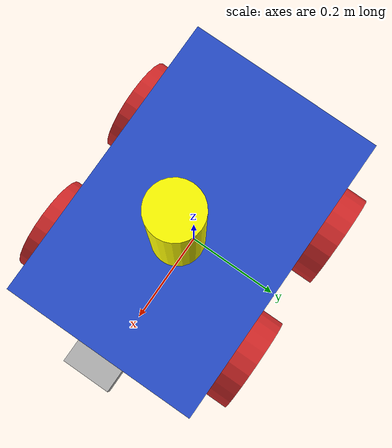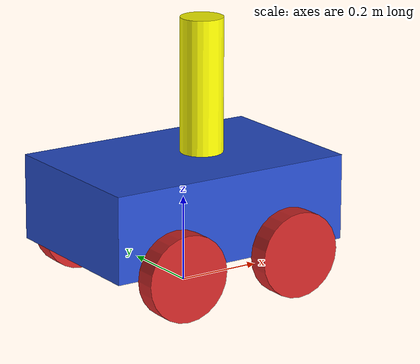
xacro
<?xml version="1.0"?>
<robot name="my_robot" xmlns:xacro="http://www.ros.org/wiki/xacro">

    <xacro:include filename="common_properties.xacro" />
    <xacro:include filename="mobile_base.xacro" />
    <xacro:include filename="mobile_base_gazebo.xacro" />
    <xacro:include filename="camera.xacro" />
    <xacro:include filename="arm.xacro" />
    <xacro:include filename="arm_gazebo.xacro" />

    <joint name="base_to_arm" type="fixed">
        <parent link="base_link" />
        <child link="arm_base_link" />
        <origin xyz="${arm_base_length/4.0} 0 ${arm_base_height/2}" rpy="0 0 0" />
    </joint>

    <gazebo reference="base_link">
    <visual>
      <material>
        <ambient>0.0 0.0 1.0 1.0</ambient> <diffuse>0.0 0.0 1.0 1.0</diffuse>
        <specular>0.1 0.1 0.1 1.0</specular>
      </material>
    </visual>
  </gazebo>

  <gazebo reference="right_wheel_link">
    <visual>
      <material>
        <ambient>0.2 0.2 0.2 1.0</ambient> <diffuse>0.2 0.2 0.2 1.0</diffuse>
      </material>
    </visual>
  </gazebo>

  <gazebo reference="left_wheel_link">
    <visual>
      <material>
        <ambient>0.2 0.2 0.2 1.0</ambient>
        <diffuse>0.2 0.2 0.2 1.0</diffuse>
      </material>
    </visual>
  </gazebo>

  <gazebo reference="caster_wheel_link">
    <visual>
      <material>
        <ambient>0.2 0.2 0.2 1.0</ambient>
        <diffuse>0.2 0.2 0.2 1.0</diffuse>
      </material>
    </visual>
  </gazebo>
</robot>

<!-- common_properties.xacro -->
<robot xmlns:xacro="http://www.ros.org/wiki/xacro">

  <material name="orange">
    <color rgba="1.0 0.5 0.0 1.0"/>
  </material>
  <material name="yellow">
    <color rgba="1.0 1.0 0.0 1.0"/>
  </material>

    <xacro:macro name="box_inertia" params="m x y z o_xyz o_rpy">
        <inertial>
            <mass value="${m}" />
            <origin xyz="${o_xyz}" rpy="${o_rpy}" />
            <inertia ixx="${(m/12) * (y*y + z*z)}" ixy="0" ixz="0"
                     iyy="${(m/12) * (x*x + z*z)}" iyz="0"
                     izz="${(m/12) * (x*x + y*y)}" />
        </inertial>
    </xacro:macro>

    <xacro:macro name="cylinder_inertia" params="m r l o_xyz o_rpy">
        <inertial>
            <mass value="${m}" />
            <origin xyz="${o_xyz}" rpy="${o_rpy}" />
            <inertia ixx="${(m/12) * (3*r*r + l*l)}" ixy="0" ixz="0"
                     iyy="${(m/12) * (3*r*r + l*l)}" iyz="0"
                     izz="${(m/2) * (r*r)}" />
        </inertial>
    </xacro:macro>

    <xacro:macro name="sphere_inertia" params="m r o_xyz o_rpy">
        <inertial>
            <mass value="${m}" />
            <origin xyz="${o_xyz}" rpy="${o_rpy}" />
            <inertia ixx="${(2/5) * m * r * r}" ixy="0" ixz="0"
                     iyy="${(2/5) * m * r * r}" iyz="0"
                     izz="${(2/5) * m * r * r}" />
        </inertial>
    </xacro:macro>

</robot>

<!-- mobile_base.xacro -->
<robot xmlns:xacro="http://www.ros.org/wiki/xacro">

    <xacro:property name="base_length" value="0.6" />
    <xacro:property name="base_width" value="0.4" />
    <xacro:property name="base_height" value="0.2" />
    <xacro:property name="wheel_radius" value="0.1" />
    <xacro:property name="wheel_length" value="0.05" />

    <link name="imu_frame"/>

    <joint name="imu_joint" type="fixed">
        <parent link="base_link"/>
        <child link="imu_frame"/>
        <origin xyz="0.0 0.0 0.08" rpy="0.0 0.0 0.0"/>
    </joint>

    <link name="base_link">
        <visual>
            <geometry>
                <box size="${base_length} ${base_width} ${base_height}" />
            </geometry>
            <origin xyz="0 0 ${base_height / 2.0}" rpy="0 0 0" />
            <material name="blue" />
        </visual>
        <collision>
            <geometry>
                <box size="${base_length} ${base_width} ${base_height}" />
            </geometry>
            <origin xyz="0 0 ${base_height / 2.0}" rpy="0 0 0" />
        </collision>
        <xacro:box_inertia m="100.0" l="${2*base_length}" w="${2*base_width}" h="${2*base_height}"
                           xyz="0 0 ${base_height / 2.0}" rpy="0 0 0" />
    </link>

    <xacro:macro name="wheel_link" params="prefix">
        <link name="${prefix}_wheel_link">
            <visual>
                <geometry>
                    <cylinder radius="${wheel_radius}" length="${wheel_length}" />
                </geometry>
                <origin xyz="0 0 0" rpy="${pi / 2.0} 0 0" />
                <material name="red" />
            </visual>
            <collision>
                <geometry>
                    <cylinder radius="${wheel_radius}" length="${wheel_length}" />
                </geometry>
                <origin xyz="0 0 0" rpy="${pi / 2.0} 0 0" />
            </collision>
            <xacro:cylinder_inertia m="10.0" r="${2*wheel_radius}" h="${2*wheel_length}"
                                    xyz="0 0 0" rpy="${pi / 2.0} 0 0" />
        </link>
    </xacro:macro>

    <xacro:wheel_link prefix="right_back" />
    <xacro:wheel_link prefix="left_back" />
    <xacro:wheel_link prefix="right_front" />
    <xacro:wheel_link prefix="left_front" />

    <link name="base_footprint">
    </link>

    <joint name="base_right_back_wheel_joint" type="continuous">
        <parent link="base_link" />
        <child link="right_back_wheel_link" />
        <origin xyz="${-base_length / 4.0} ${-(base_width + wheel_length) / 2.0} 0" rpy="0 0 0" />
        <axis xyz="0 1 0" />
    </joint>

    <joint name="base_right_front_wheel_joint" type="continuous">
        <parent link="base_link" />
        <child link="right_front_wheel_link" />
        <origin xyz="${(base_length) / 4.0} ${-(base_width + wheel_length) / 2.0} 0" rpy="0 0 0" />
        <axis xyz="0 1 0" />
    </joint>

     <joint name="base_left_back_wheel_joint" type="continuous">
        <parent link="base_link" />
        <child link="left_back_wheel_link" />
        <origin xyz="${-base_length / 4.0} ${(base_width + wheel_length) / 2.0} 0" rpy="0 0 0" />
        <axis xyz="0 1 0" />
    </joint>

    <joint name="base_left_front_wheel_joint" type="continuous">
        <parent link="base_link" />
        <child link="left_front_wheel_link" />
        <origin xyz="${base_length / 4.0} ${(base_width + wheel_length) / 2.0} 0" rpy="0 0 0" />
        <axis xyz="0 1 0" />
    </joint>

    <joint name="base_footprint_joint" type="fixed">
        <parent link="base_footprint" />
        <child link="base_link" />
        <origin xyz="0 0 ${wheel_radius}" rpy="0 0 0" />
    </joint>

</robot>

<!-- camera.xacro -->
<robot xmlns:xacro="http://www.ros.org/wiki/xacro">

    <xacro:property name="camera_length" value="0.1" />
    <xacro:property name="camera_width" value="0.1" />
    <xacro:property name="camera_height" value="0.05" />

   <link name="camera_link">

    <visual>
        <geometry>
            <box size="${camera_length} ${camera_width} ${camera_height}" />
        </geometry>

    </visual>

    <collision>
        <geometry>
            <box size="${camera_length} ${camera_width} ${camera_height}" />
        </geometry>
    </collision>
    <xacro:box_inertia m="0.1" x="${camera_length}" y="${camera_width}" z="${camera_height}" o_xyz="0 0 0" o_rpy="0 0 0" />

   </link>

   <joint name="base_camera_joint" type="fixed">
    <parent link="base_link" />
    <child link="camera_link" />
    <origin xyz="${base_length/2.0} 0 ${base_height/2.0}" rpy="0 0 0" />
   </joint>

   <gazebo reference="camera_link">
    <sensor name="camera" type="camera">
  <camera>
        <horizontal_fov>1.3962634</horizontal_fov>
        <image>
            <width>648</width>
            <height>480</height>
            <format>R8G8B8</format>
        </image>
        <clip>
            <near>0.1</near>
            <far>15</far>
        </clip>
        <noise>
            <type>gaussian</type>
            <mean>0.0</mean>
            <stddev>0.007</stddev>
        </noise>
        <optical_frame_id>camera_link_optical</optical_frame_id>
    </camera>
        <always_on>1</always_on>
        <update_rate>28</update_rate>
        <visualize>true</visualize>
        <topic>camera/image_raw</topic>
    </sensor>
   </gazebo>

</robot>

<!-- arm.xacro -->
<robot xmlns:xacro="http://www.ros.org/wiki/xacro">

    <xacro:property name="arm_base_length" value="0.2" />
    <xacro:property name="arm_base_width" value="0.2" />
    <xacro:property name="arm_base_height" value="0.01" />
    <xacro:property name="forearm_radius" value="0.05" />
    <xacro:property name="forearm_length" value="0.5" />

    <link name="arm_base_link">
        <visual>
            <geometry>
                <box size="${arm_base_length} ${arm_base_width} ${arm_base_height}" />
            </geometry>
            <origin xyz="0 0 ${arm_base_height / 2.0}" rpy="0 0 0" />
            <material name="orange" />
        </visual>
        <collision>
            <geometry>
                <box size="${arm_base_length} ${arm_base_width} ${arm_base_height}" />
            </geometry>
            <origin xyz="0 0 ${arm_base_height / 2.0}" rpy="0 0 0" />
        </collision>
        <xacro:box_inertia m="0.5" l="${2*arm_base_length}" w="${2*arm_base_width}" h="${2*arm_base_height}"
                           xyz="0 0 ${arm_base_height / 2.0}" rpy="0 0 0" />
    </link>

    <link name="forearm_link">
        <visual>
            <geometry>
                <cylinder radius="${forearm_radius}" length="${forearm_length}" />
            </geometry>
            <origin xyz="0 0 ${forearm_length/2.0}" rpy="0 0 0" />
            <material name="yellow" />
        </visual>
        <collision>
            <geometry>
                <cylinder radius="${forearm_radius}" length="${forearm_length}" />
            </geometry>
            <origin xyz="0 0 ${forearm_length/2.0}" rpy="0 0 0" />
        </collision>
        <xacro:cylinder_inertia m="0.3" r="${2*forearm_radius}" h="${2*forearm_length}"
                                xyz="0 0 ${forearm_length/2.0}" rpy="0 0 0" />
    </link>

    <joint name="arm_base_forearm_joint" type="revolute">
        <parent link="arm_base_link" />
        <child link="forearm_link" />
        <origin xyz="0 0 ${arm_base_height}" rpy="0 0 0" />
        <axis xyz="0 0 1" />
        <dynamics damping="1" friction="2"/>
        <limit lower="-3.14" upper="3.14" effort="500" velocity="1.0"/>
    </joint>

</robot>
